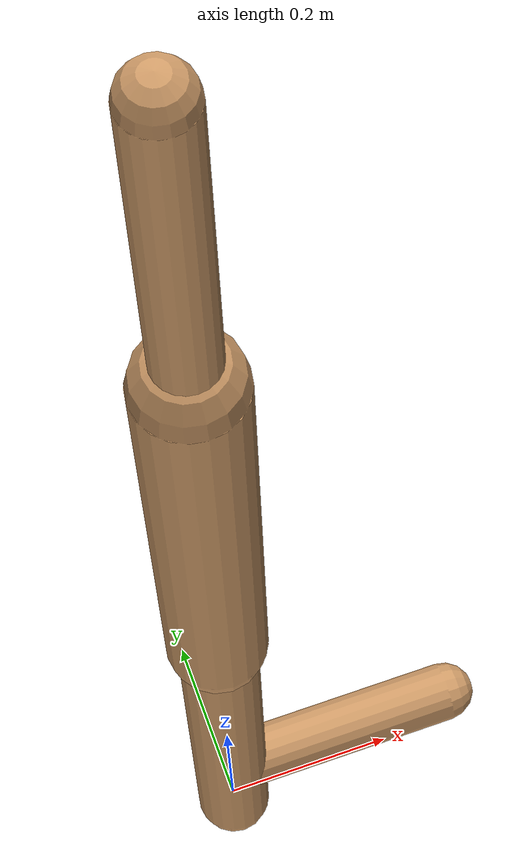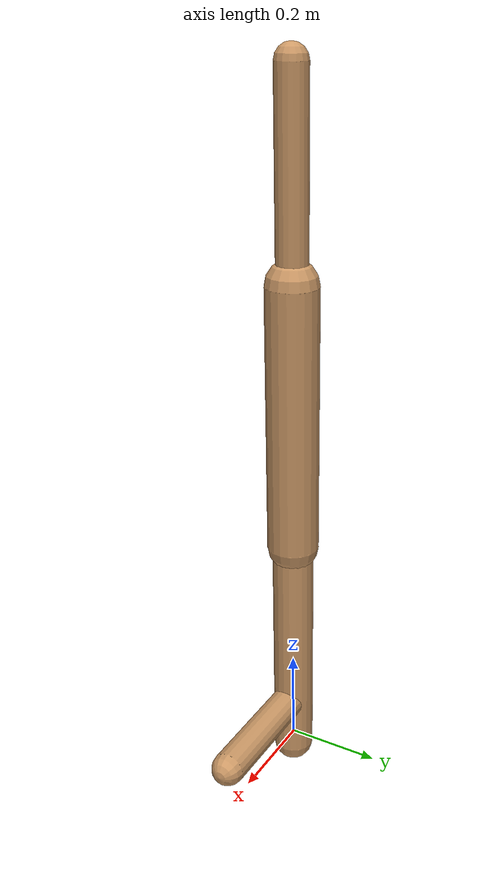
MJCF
<mujoco model="walker2d">
  <compiler angle="degree" coordinate="global" inertiafromgeom="true" />
  <default>
    <joint armature="0.01" damping=".1" limited="true" />
    <geom conaffinity="0" condim="3" contype="1" density="1000" friction="0.8 .1 .1" rgba="0.8 0.6 .4 1" />
  </default>
  <option integrator="RK4" timestep="0.002" />
  <worldbody>

    <body name="torso" pos="0 0 0.2351333087788545">
      <joint armature="0" axis="1 0 0" damping="0" limited="false" name="ignorex" pos="0 0 0" stiffness="0" type="slide" />
      <joint armature="0" axis="0 0 1" damping="0" limited="false" name="ignorez" pos="0 0 0" ref="1.25" stiffness="0" type="slide" />
      <joint armature="0" axis="0 1 0" damping="0" limited="false" name="ignorey" pos="0 0 0" stiffness="0" type="hinge" />
      <geom fromto="0 0 1.45 0 0 1.05" name="torso_geom" size="0.032534811874150485" type="capsule" />
      <body name="thigh">
        <joint axis="0 -1 0" name="thigh_joint" pos="0 0 1.05" range="-150 0" type="hinge" />
        <geom fromto="0.0 0.0 1.05 0.0 0.0 0.48862106426264784" name="thigh_geom" size="0.05435746778476269" type="capsule" />
        <body name="leg" pos="0.0 0.0 -0.11137893573735214">
          <joint axis="0 -1 0" name="leg_joint" pos="0 0 0.6" range="-150 0" type="hinge" />
          <geom fromto="0.0 0.0 0.6 0.0 0.0 -0.023754373041502352" name="leg_geom" size="0.043485974227810156" type="capsule" />
          <body name="foot" pos="0.0 0.0 -0.12375437304150236">
            <joint axis="0 -1 0" name="foot_joint" pos="0 0 0.1" range="-45 45" type="hinge" />
            <geom fromto="-0.0 0.0 0.1 0.2756100860234595 0.0 0.1" name="foot_geom" size="0.03500959236306502" type="capsule" />
          </body>
        </body>
      </body>

      <body name="thigh_left">
        <joint axis="0 -1 0" name="thigh_left_joint" pos="0 0 1.05" range="-150 0" type="hinge" />
        <geom fromto="0.0 0.0 1.05 0.0 0.0 0.48862106426264784" name="thigh_left_geom" rgba=".7 .3 .6 1" size="0.05435746778476269" type="capsule" />
        <body name="leg_left" pos="0.0 0.0 -0.11137893573735214">
          <joint axis="0 -1 0" name="leg_left_joint" pos="0 0 0.6" range="-150 0" type="hinge" />
          <geom fromto="0.0 0.0 0.6 0.0 0.0 -0.023754373041502352" name="leg_left_geom" rgba=".7 .3 .6 1" size="0.043485974227810156" type="capsule" />
          <body name="foot_left" pos="0.0 0.0 -0.12375437304150236">
            <joint axis="0 -1 0" name="foot_left_joint" pos="0 0 0.1" range="-45 45" type="hinge" />
            <geom fromto="-0.0 0.0 0.1 0.2756100860234595 0.0 0.1" name="foot_left_geom" rgba=".7 .3 .6 1" size="0.03500959236306502" type="capsule" />
          </body>
        </body>
      </body>
    </body>
  </worldbody>
  <actuator>

    <motor ctrllimited="true" ctrlrange="-1.0 1.0" gear="100" joint="thigh_joint" />
    <motor ctrllimited="true" ctrlrange="-1.0 1.0" gear="100" joint="leg_joint" />
    <motor ctrllimited="true" ctrlrange="-1.0 1.0" gear="100" joint="foot_joint" />
    <motor ctrllimited="true" ctrlrange="-1.0 1.0" gear="100" joint="thigh_left_joint" />
    <motor ctrllimited="true" ctrlrange="-1.0 1.0" gear="100" joint="leg_left_joint" />
    <motor ctrllimited="true" ctrlrange="-1.0 1.0" gear="100" joint="foot_left_joint" />

  </actuator>
</mujoco>
